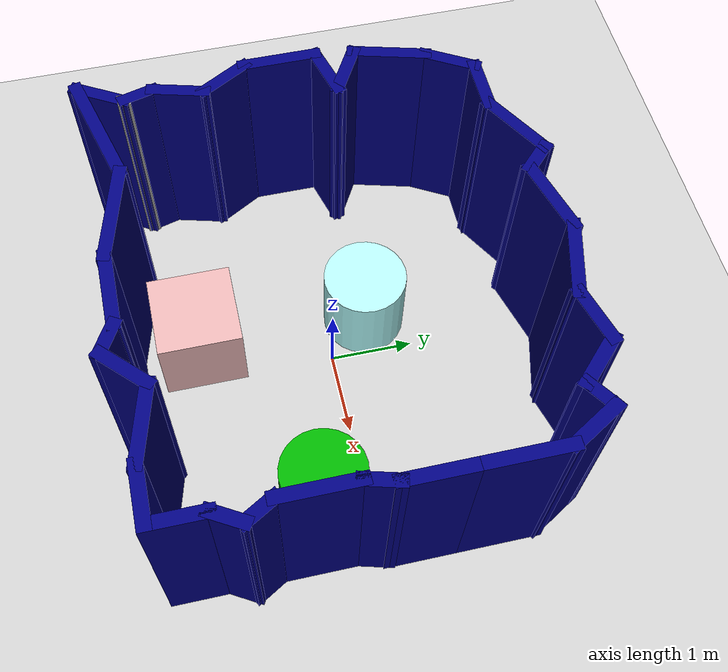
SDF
<sdf version="1.6">
 <world name="default">
  <light name="sun" type="directional">
   <pose>0 0 10 0 -0 0</pose>
   <diffuse>0.8 0.8 0.8 1</diffuse>
   <specular>0.2 0.2 0.2 1</specular>
   <attenuation>
    <range>1000</range>
    <constant>0.9</constant>
    <linear>0.01</linear>
    <quadratic>0.001</quadratic>
   </attenuation>
   <direction>-0.5 0.1 -0.9</direction>
  </light>
  <model name="ground_plane">
   <static>1</static>
   <link name="link">
    <collision name="collision">
     <geometry><plane><normal>0 0 1</normal><size>100 100</size></plane></geometry>
     <surface>
      <contact><collide_bitmask>65535</collide_bitmask></contact>
      <friction><ode><mu>100</mu><mu2>50</mu2></ode></friction>
     </surface>
    </collision>
    <visual name="visual">
     <cast_shadows>0</cast_shadows>
     <geometry><plane><normal>0 0 1</normal><size>100 100</size></plane></geometry>
     <material>
      <script><uri>file://media/materials/scripts/gazebo.material</uri><name>Gazebo/Grey</name></script>
     </material>
    </visual>
   </link>
  </model>
  <gravity>0 0 -9.8</gravity>
  <magnetic_field>6e-06 2.3e-05 -4.2e-05</magnetic_field>
  <atmosphere type="adiabatic"/>
  <physics name="default_physics" default="0" type="ode">
   <max_step_size>0.001</max_step_size>
   <real_time_factor>1</real_time_factor>
   <real_time_update_rate>1000</real_time_update_rate>
  </physics>
  <scene><ambient>0.4 0.4 0.4 1</ambient><background>0.7 0.7 0.7 1</background><shadows>1</shadows></scene>
  <audio><device>default</device></audio>
  <spherical_coordinates>
   <surface_model>EARTH_WGS84</surface_model>
   <latitude_deg>0</latitude_deg>
   <longitude_deg>0</longitude_deg>
   <elevation>0</elevation>
   <heading_deg>0</heading_deg>
  </spherical_coordinates>
  <model name="maze3">
   <pose>-0.02773 0.03242 0 0 -0 0</pose>
   <link name="Wall_19">
    <collision name="Wall_19_Collision">
     <geometry><box><size>0.75 0.15 2.5</size></box></geometry>
     <pose>0 0 1.25 0 -0 0</pose>
    </collision>
    <visual name="Wall_19_Visual">
     <pose>0 0 1.25 0 -0 0</pose>
     <geometry><box><size>0.75 0.15 2.5</size></box></geometry>
     <material>
      <script><uri>file://media/materials/scripts/gazebo.material</uri><name>Gazebo/Grey</name></script>
      <ambient>0 0 0.498039 1</ambient>
     </material>
     <meta><layer>0</layer></meta>
    </visual>
    <pose>1.88205 2.26472 0 0 -0 2.35619</pose>
   </link>
   <link name="Wall_20">
    <collision name="Wall_20_Collision">
     <geometry><box><size>0.75 0.15 2.5</size></box></geometry>
     <pose>0 0 1.25 0 -0 0</pose>
    </collision>
    <visual name="Wall_20_Visual">
     <pose>0 0 1.25 0 -0 0</pose>
     <geometry><box><size>0.75 0.15 2.5</size></box></geometry>
     <material>
      <script><uri>file://media/materials/scripts/gazebo.material</uri><name>Gazebo/Grey</name></script>
      <ambient>0 0 0.498039 1</ambient>
     </material>
     <meta><layer>0</layer></meta>
    </visual>
    <pose>1.38014 2.39921 0 0 -0 -2.87979</pose>
   </link>
   <link name="Wall_21">
    <collision name="Wall_21_Collision">
     <geometry><box><size>1 0.15 2.5</size></box></geometry>
     <pose>0 0 1.25 0 -0 0</pose>
    </collision>
    <visual name="Wall_21_Visual">
     <pose>0 0 1.25 0 -0 0</pose>
     <geometry><box><size>1 0.15 2.5</size></box></geometry>
     <material>
      <script><uri>file://media/materials/scripts/gazebo.material</uri><name>Gazebo/Grey</name></script>
      <ambient>0 0 0.498039 1</ambient>
     </material>
     <meta><layer>0</layer></meta>
    </visual>
    <pose>0.679842 2.43156 0 0 -0 2.87979</pose>
   </link>
   <link name="Wall_22">
    <collision name="Wall_22_Collision">
     <geometry><box><size>1 0.15 2.5</size></box></geometry>
     <pose>0 0 1.25 0 -0 0</pose>
    </collision>
    <visual name="Wall_22_Visual">
     <pose>0 0 1.25 0 -0 0</pose>
     <geometry><box><size>1 0.15 2.5</size></box></geometry>
     <material>
      <script><uri>file://media/materials/scripts/gazebo.material</uri><name>Gazebo/Grey</name></script>
      <ambient>0 0 0.498039 1</ambient>
     </material>
     <meta><layer>0</layer></meta>
    </visual>
    <pose>-0.141195 2.43156 0 0 -0 -2.87979</pose>
   </link>
   <link name="Wall_23">
    <collision name="Wall_23_Collision">
     <geometry><box><size>0.5 0.15 2.5</size></box></geometry>
     <pose>0 0 1.25 0 -0 0</pose>
    </collision>
    <visual name="Wall_23_Visual">
     <pose>0 0 1.25 0 -0 0</pose>
     <geometry><box><size>0.5 0.15 2.5</size></box></geometry>
     <material>
      <script><uri>file://media/materials/scripts/gazebo.material</uri><name>Gazebo/Grey</name></script>
      <ambient>0 0 0.498039 1</ambient>
     </material>
     <meta><layer>0</layer></meta>
    </visual>
    <pose>-0.675458 2.44531 0 0 -0 2.35619</pose>
   </link>
   <link name="Wall_24">
    <collision name="Wall_24_Collision">
     <geometry><box><size>1 0.15 2.5</size></box></geometry>
     <pose>0 0 1.25 0 -0 0</pose>
    </collision>
    <visual name="Wall_24_Visual">
     <pose>0 0 1.25 0 -0 0</pose>
     <geometry><box><size>1 0.15 2.5</size></box></geometry>
     <material>
      <script><uri>file://media/materials/scripts/gazebo.material</uri><name>Gazebo/Grey</name></script>
      <ambient>0 0 0.498039 1</ambient>
     </material>
     <meta><layer>0</layer></meta>
    </visual>
    <pose>-1.16726 2.35655 0 0 -0 -2.61799</pose>
   </link>
   <link name="Wall_25">
    <collision name="Wall_25_Collision">
     <geometry><box><size>0.75 0.15 2.5</size></box></geometry>
     <pose>0 0 1.25 0 -0 0</pose>
    </collision>
    <visual name="Wall_25_Visual">
     <pose>0 0 1.25 0 -0 0</pose>
     <geometry><box><size>0.75 0.15 2.5</size></box></geometry>
     <material>
      <script><uri>file://media/materials/scripts/gazebo.material</uri><name>Gazebo/Grey</name></script>
      <ambient>0 0 0.498039 1</ambient>
     </material>
     <meta><layer>0</layer></meta>
    </visual>
    <pose>-1.83532 2.14405 0 0 -0 3.14159</pose>
   </link>
   <link name="Wall_26">
    <collision name="Wall_26_Collision">
     <geometry><box><size>0.75 0.15 2.5</size></box></geometry>
     <pose>0 0 1.25 0 -0 0</pose>
    </collision>
    <visual name="Wall_26_Visual">
     <pose>0 0 1.25 0 -0 0</pose>
     <geometry><box><size>0.75 0.15 2.5</size></box></geometry>
     <material>
      <script><uri>file://media/materials/scripts/gazebo.material</uri><name>Gazebo/Grey</name></script>
      <ambient>0 0 0.498039 1</ambient>
     </material>
     <meta><layer>0</layer></meta>
    </visual>
    <pose>-2.28532 1.88424 0 0 -0 -2.0944</pose>
   </link>
   <link name="Wall_27">
    <collision name="Wall_27_Collision">
     <geometry><box><size>1 0.15 2.5</size></box></geometry>
     <pose>0 0 1.25 0 -0 0</pose>
    </collision>
    <visual name="Wall_27_Visual">
     <pose>0 0 1.25 0 -0 0</pose>
     <geometry><box><size>1 0.15 2.5</size></box></geometry>
     <material>
      <script><uri>file://media/materials/scripts/gazebo.material</uri><name>Gazebo/Grey</name></script>
      <ambient>0 0 0.498039 1</ambient>
     </material>
     <meta><layer>0</layer></meta>
    </visual>
    <pose>-2.54532 1.21392 0 0 -0 -1.8326</pose>
   </link>
   <link name="Wall_28">
    <collision name="Wall_28_Collision">
     <geometry><box><size>0.75 0.15 2.5</size></box></geometry>
     <pose>0 0 1.25 0 -0 0</pose>
    </collision>
    <visual name="Wall_28_Visual">
     <pose>0 0 1.25 0 -0 0</pose>
     <geometry><box><size>0.75 0.15 2.5</size></box></geometry>
     <material>
      <script><uri>file://media/materials/scripts/gazebo.material</uri><name>Gazebo/Grey</name></script>
      <ambient>0 0 0.498039 1</ambient>
     </material>
     <meta><layer>0</layer></meta>
    </visual>
    <pose>-2.39551 0.653397 0 0 -0 -0.523599</pose>
   </link>
   <link name="Wall_29">
    <collision name="Wall_29_Collision">
     <geometry><box><size>0.75 0.15 2.5</size></box></geometry>
     <pose>0 0 1.25 0 -0 0</pose>
    </collision>
    <visual name="Wall_29_Visual">
     <pose>0 0 1.25 0 -0 0</pose>
     <geometry><box><size>0.75 0.15 2.5</size></box></geometry>
     <material>
      <script><uri>file://media/materials/scripts/gazebo.material</uri><name>Gazebo/Grey</name></script>
      <ambient>0 0 0.498039 1</ambient>
     </material>
     <meta><layer>0</layer></meta>
    </visual>
    <pose>-2.42548 0.425751 0 0 -0 -2.87979</pose>
   </link>
   <link name="Wall_30">
    <collision name="Wall_30_Collision">
     <geometry><box><size>1 0.15 2.5</size></box></geometry>
     <pose>0 0 1.25 0 -0 0</pose>
    </collision>
    <visual name="Wall_30_Visual">
     <pose>0 0 1.25 0 -0 0</pose>
     <geometry><box><size>1 0.15 2.5</size></box></geometry>
     <material>
      <script><uri>file://media/materials/scripts/gazebo.material</uri><name>Gazebo/Grey</name></script>
      <ambient>0 0 0.498039 1</ambient>
     </material>
     <meta><layer>0</layer></meta>
    </visual>
    <pose>-2.71526 -0.076894 0 0 -0 -1.5708</pose>
   </link>
   <link name="Wall_31">
    <collision name="Wall_31_Collision">
     <geometry><box><size>0.75 0.15 2.5</size></box></geometry>
     <pose>0 0 1.25 0 -0 0</pose>
    </collision>
    <visual name="Wall_31_Visual">
     <pose>0 0 1.25 0 -0 0</pose>
     <geometry><box><size>0.75 0.15 2.5</size></box></geometry>
     <material>
      <script><uri>file://media/materials/scripts/gazebo.material</uri><name>Gazebo/Grey</name></script>
      <ambient>0 0 0.498039 1</ambient>
     </material>
     <meta><layer>0</layer></meta>
    </visual>
    <pose>-2.56526 -0.761702 0 0 -0 -1.0472</pose>
   </link>
   <link name="Wall_32">
    <collision name="Wall_32_Collision">
     <geometry><box><size>0.75 0.15 2.5</size></box></geometry>
     <pose>0 0 1.25 0 -0 0</pose>
    </collision>
    <visual name="Wall_32_Visual">
     <pose>0 0 1.25 0 -0 0</pose>
     <geometry><box><size>0.75 0.15 2.5</size></box></geometry>
     <material>
      <script><uri>file://media/materials/scripts/gazebo.material</uri><name>Gazebo/Grey</name></script>
      <ambient>0 0 0.498039 1</ambient>
     </material>
     <meta><layer>0</layer></meta>
    </visual>
    <pose>-2.4929 -1.31129 0 0 -0 -1.8326</pose>
   </link>
   <link name="Wall_33">
    <collision name="Wall_33_Collision">
     <geometry><box><size>0.5 0.15 2.5</size></box></geometry>
     <pose>0 0 1.25 0 -0 0</pose>
    </collision>
    <visual name="Wall_33_Visual">
     <pose>0 0 1.25 0 -0 0</pose>
     <geometry><box><size>0.5 0.15 2.5</size></box></geometry>
     <material>
      <script><uri>file://media/materials/scripts/gazebo.material</uri><name>Gazebo/Grey</name></script>
      <ambient>0 0 0.498039 1</ambient>
     </material>
     <meta><layer>0</layer></meta>
    </visual>
    <pose>-2.52526 -1.7701 0 0 -0 -1.309</pose>
   </link>
   <link name="Wall_34">
    <collision name="Wall_34_Collision">
     <geometry><box><size>0.16 0.15 2.5</size></box></geometry>
     <pose>0 0 1.25 0 -0 0</pose>
    </collision>
    <visual name="Wall_34_Visual">
     <pose>0 0 1.25 0 -0 0</pose>
     <geometry><box><size>0.16 0.15 2.5</size></box></geometry>
     <material>
      <script><uri>file://media/materials/scripts/gazebo.material</uri><name>Gazebo/Grey</name></script>
      <ambient>1 1 1 1</ambient>
     </material>
     <meta><layer>0</layer></meta>
    </visual>
    <pose>-2.47496 -1.93914 0 0 -0 0</pose>
   </link>
   <link name="Wall_35">
    <collision name="Wall_35_Collision">
     <geometry><box><size>0.75 0.15 2.5</size></box></geometry>
     <pose>0 0 1.25 0 -0 0</pose>
    </collision>
    <visual name="Wall_35_Visual">
     <pose>0 0 1.25 0 -0 0</pose>
     <geometry><box><size>0.75 0.15 2.5</size></box></geometry>
     <material>
      <script><uri>file://media/materials/scripts/gazebo.material</uri><name>Gazebo/Grey</name></script>
      <ambient>0 0 0.498039 1</ambient>
     </material>
     <meta><layer>0</layer></meta>
    </visual>
    <pose>-2.61996 -2.19895 0 0 -0 -2.0944</pose>
   </link>
   <link name="Wall_36">
    <collision name="Wall_36_Collision">
     <geometry><box><size>1.5 0.15 2.5</size></box></geometry>
     <pose>0 0 1.25 0 -0 0</pose>
    </collision>
    <visual name="Wall_36_Visual">
     <pose>0 0 1.25 0 -0 0</pose>
     <geometry><box><size>1.5 0.15 2.5</size></box></geometry>
     <material>
      <script><uri>file://media/materials/scripts/gazebo.material</uri><name>Gazebo/Grey</name></script>
      <ambient>0 0 0.498039 1</ambient>
     </material>
     <meta><layer>0</layer></meta>
    </visual>
    <pose>-2.11796 -2.28405 0 0 -0 0.261799</pose>
   </link>
   <link name="Wall_37">
    <collision name="Wall_37_Collision">
     <geometry><box><size>1.25 0.15 2.5</size></box></geometry>
     <pose>0 0 1.25 0 -0 0</pose>
    </collision>
    <visual name="Wall_37_Visual">
     <pose>0 0 1.25 0 -0 0</pose>
     <geometry><box><size>1.25 0.15 2.5</size></box></geometry>
     <material>
      <script><uri>file://media/materials/scripts/gazebo.material</uri><name>Gazebo/Grey</name></script>
      <ambient>0 0 0.498039 1</ambient>
     </material>
     <meta><layer>0</layer></meta>
    </visual>
    <pose>-0.934705 -2.2517 0 0 -0 -0.261799</pose>
   </link>
   <link name="Wall_38">
    <collision name="Wall_38_Collision">
     <geometry><box><size>1 0.15 2.5</size></box></geometry>
     <pose>0 0 1.25 0 -0 0</pose>
    </collision>
    <visual name="Wall_38_Visual">
     <pose>0 0 1.25 0 -0 0</pose>
     <geometry><box><size>1 0.15 2.5</size></box></geometry>
     <material>
      <script><uri>file://media/materials/scripts/gazebo.material</uri><name>Gazebo/Grey</name></script>
      <ambient>0 0 0.498039 1</ambient>
     </material>
     <meta><layer>0</layer></meta>
    </visual>
    <pose>0.021554 -2.39405 0 0 -0 0</pose>
   </link>
   <link name="Wall_39">
    <collision name="Wall_39_Collision">
     <geometry><box><size>0.5 0.15 2.5</size></box></geometry>
     <pose>0 0 1.25 0 -0 0</pose>
    </collision>
    <visual name="Wall_39_Visual">
     <pose>0 0 1.25 0 -0 0</pose>
     <geometry><box><size>0.5 0.15 2.5</size></box></geometry>
     <material>
      <script><uri>file://media/materials/scripts/gazebo.material</uri><name>Gazebo/Grey</name></script>
      <ambient>0 0 0.498039 1</ambient>
     </material>
     <meta><layer>0</layer></meta>
    </visual>
    <pose>0.598109 -2.48155 0 0 -0 -0.523599</pose>
   </link>
   <link name="Wall_40">
    <collision name="Wall_40_Collision">
     <geometry><box><size>0.75 0.15 2.5</size></box></geometry>
     <pose>0 0 1.25 0 -0 0</pose>
    </collision>
    <visual name="Wall_40_Visual">
     <pose>0 0 1.25 0 -0 0</pose>
     <geometry><box><size>0.75 0.15 2.5</size></box></geometry>
     <material>
      <script><uri>file://media/materials/scripts/gazebo.material</uri><name>Gazebo/Grey</name></script>
      <ambient>0 0 0.498039 1</ambient>
     </material>
     <meta><layer>0</layer></meta>
    </visual>
    <pose>0.961795 -2.35692 0 0 -0 0.785398</pose>
   </link>
   <link name="Wall_41">
    <collision name="Wall_41_Collision">
     <geometry><box><size>1 0.15 2.5</size></box></geometry>
     <pose>0 0 1.25 0 -0 0</pose>
    </collision>
    <visual name="Wall_41_Visual">
     <pose>0 0 1.25 0 -0 0</pose>
     <geometry><box><size>1 0.15 2.5</size></box></geometry>
     <material>
      <script><uri>file://media/materials/scripts/gazebo.material</uri><name>Gazebo/Grey</name></script>
      <ambient>0 0 0.498039 1</ambient>
     </material>
     <meta><layer>0</layer></meta>
    </visual>
    <pose>1.58445 -2.25478 0 0 -0 -0.261799</pose>
   </link>
   <link name="Wall_42">
    <collision name="Wall_42_Collision">
     <geometry><box><size>0.75 0.15 2.5</size></box></geometry>
     <pose>0 0 1.25 0 -0 0</pose>
    </collision>
    <visual name="Wall_42_Visual">
     <pose>0 0 1.25 0 -0 0</pose>
     <geometry><box><size>0.75 0.15 2.5</size></box></geometry>
     <material>
      <script><uri>file://media/materials/scripts/gazebo.material</uri><name>Gazebo/Grey</name></script>
      <ambient>0 0 0.498039 1</ambient>
     </material>
     <meta><layer>0</layer></meta>
    </visual>
    <pose>2.29496 -2.36478 0 0 -0 0</pose>
   </link>
   <link name="Wall_43">
    <collision name="Wall_43_Collision">
     <geometry><box><size>0.75 0.15 2.5</size></box></geometry>
     <pose>0 0 1.25 0 -0 0</pose>
    </collision>
    <visual name="Wall_43_Visual">
     <pose>0 0 1.25 0 -0 0</pose>
     <geometry><box><size>0.75 0.15 2.5</size></box></geometry>
     <material>
      <script><uri>file://media/materials/scripts/gazebo.material</uri><name>Gazebo/Grey</name></script>
      <ambient>0 0 0.498039 1</ambient>
     </material>
     <meta><layer>0</layer></meta>
    </visual>
    <pose>2.59496 -2.06478 0 0 -0 1.5708</pose>
   </link>
   <link name="Wall_44">
    <collision name="Wall_44_Collision">
     <geometry><box><size>0.5 0.15 2.5</size></box></geometry>
     <pose>0 0 1.25 0 -0 0</pose>
    </collision>
    <visual name="Wall_44_Visual">
     <pose>0 0 1.25 0 -0 0</pose>
     <geometry><box><size>0.5 0.15 2.5</size></box></geometry>
     <material>
      <script><uri>file://media/materials/scripts/gazebo.material</uri><name>Gazebo/Grey</name></script>
      <ambient>0 0 0.498039 1</ambient>
     </material>
     <meta><layer>0</layer></meta>
    </visual>
    <pose>2.68246 -1.61323 0 0 -0 1.0472</pose>
   </link>
   <link name="Wall_45">
    <collision name="Wall_45_Collision">
     <geometry><box><size>0.5 0.15 2.5</size></box></geometry>
     <pose>0 0 1.25 0 -0 0</pose>
    </collision>
    <visual name="Wall_45_Visual">
     <pose>0 0 1.25 0 -0 0</pose>
     <geometry><box><size>0.5 0.15 2.5</size></box></geometry>
     <material>
      <script><uri>file://media/materials/scripts/gazebo.material</uri><name>Gazebo/Grey</name></script>
      <ambient>0 0 0.498039 1</ambient>
     </material>
     <meta><layer>0</layer></meta>
    </visual>
    <pose>2.68246 -1.31012 0 0 -0 2.0944</pose>
   </link>
   <link name="Wall_46">
    <collision name="Wall_46_Collision">
     <geometry><box><size>1 0.15 2.5</size></box></geometry>
     <pose>0 0 1.25 0 -0 0</pose>
    </collision>
    <visual name="Wall_46_Visual">
     <pose>0 0 1.25 0 -0 0</pose>
     <geometry><box><size>1 0.15 2.5</size></box></geometry>
     <material>
      <script><uri>file://media/materials/scripts/gazebo.material</uri><name>Gazebo/Grey</name></script>
      <ambient>0 0 0.498039 1</ambient>
     </material>
     <meta><layer>0</layer></meta>
    </visual>
    <pose>2.59496 -0.733564 0 0 -0 1.5708</pose>
   </link>
   <link name="Wall_47">
    <collision name="Wall_47_Collision">
     <geometry><box><size>0.5 0.15 2.5</size></box></geometry>
     <pose>0 0 1.25 0 -0 0</pose>
    </collision>
    <visual name="Wall_47_Visual">
     <pose>0 0 1.25 0 -0 0</pose>
     <geometry><box><size>0.5 0.15 2.5</size></box></geometry>
     <material>
      <script><uri>file://media/materials/scripts/gazebo.material</uri><name>Gazebo/Grey</name></script>
      <ambient>0 0 0.498039 1</ambient>
     </material>
     <meta><layer>0</layer></meta>
    </visual>
    <pose>2.64026 -0.139527 0 0 -0 1.309</pose>
   </link>
   <link name="Wall_48">
    <collision name="Wall_48_Collision">
     <geometry><box><size>1 0.15 2.5</size></box></geometry>
     <pose>0 0 1.25 0 -0 0</pose>
    </collision>
    <visual name="Wall_48_Visual">
     <pose>0 0 1.25 0 -0 0</pose>
     <geometry><box><size>1 0.15 2.5</size></box></geometry>
     <material>
      <script><uri>file://media/materials/scripts/gazebo.material</uri><name>Gazebo/Grey</name></script>
      <ambient>0 0 0.498039 1</ambient>
     </material>
     <meta><layer>0</layer></meta>
    </visual>
    <pose>2.68555 0.45451 0 0 -0 1.5708</pose>
   </link>
   <link name="Wall_49">
    <collision name="Wall_49_Collision">
     <geometry><box><size>1 0.15 2.5</size></box></geometry>
     <pose>0 0 1.25 0 -0 0</pose>
    </collision>
    <visual name="Wall_49_Visual">
     <pose>0 0 1.25 0 -0 0</pose>
     <geometry><box><size>1 0.15 2.5</size></box></geometry>
     <material>
      <script><uri>file://media/materials/scripts/gazebo.material</uri><name>Gazebo/Grey</name></script>
      <ambient>0 0 0.498039 1</ambient>
     </material>
     <meta><layer>0</layer></meta>
    </visual>
    <pose>2.68555 1.30451 0 0 -0 1.5708</pose>
   </link>
   <link name="Wall_50">
    <collision name="Wall_50_Collision">
     <geometry><box><size>0.75 0.15 2.5</size></box></geometry>
     <pose>0 0 1.25 0 -0 0</pose>
    </collision>
    <visual name="Wall_50_Visual">
     <pose>0 0 1.25 0 -0 0</pose>
     <geometry><box><size>0.75 0.15 2.5</size></box></geometry>
     <material>
      <script><uri>file://media/materials/scripts/gazebo.material</uri><name>Gazebo/Grey</name></script>
      <ambient>0 0 0.498039 1</ambient>
     </material>
     <meta><layer>0</layer></meta>
    </visual>
    <pose>2.53555 1.98932 0 0 -0 2.0944</pose>
   </link>
   <link name="Wall_51">
    <collision name="Wall_51_Collision">
     <geometry><box><size>0.501459 0.15 2.5</size></box></geometry>
     <pose>0 0 1.25 0 -0 0</pose>
    </collision>
    <visual name="Wall_51_Visual">
     <pose>0 0 1.25 0 -0 0</pose>
     <geometry><box><size>0.501459 0.15 2.5</size></box></geometry>
     <material>
      <script><uri>file://media/materials/scripts/gazebo.material</uri><name>Gazebo/Grey</name></script>
      <ambient>0 0 0.498039 1</ambient>
     </material>
     <meta><layer>0</layer></meta>
    </visual>
    <pose>2.23986 2.15086 0 0 -0 -2.54817</pose>
   </link>
   <static>1</static>
  </model>
  <model name="unit_cylinder">
   <link name="link">
    <inertial>
     <mass>1</mass>
     <inertia><ixx>0.145833</ixx><ixy>0</ixy><ixz>0</ixz><iyy>0.145833</iyy><iyz>0</iyz><izz>0.125</izz></inertia>
    </inertial>
    <visual name="visual">
     <geometry><cylinder><radius>0.5</radius><length>1</length></cylinder></geometry>
     <material>
      <script><name>Gazebo/Grey</name><uri>file://media/materials/scripts/gazebo.material</uri></script>
      <diffuse>0 0.7 0 0</diffuse>
      <shader type="vertex"><normal_map>__default__</normal_map></shader>
      <ambient>0.3 0.8 0.3 1</ambient>
      <specular>0.01 0.41 0.01 1</specular>
      <emissive>0 0.6 0 1</emissive>
     </material>
    </visual>
    <collision name="collision">
     <geometry><cylinder><radius>0.5</radius><length>1</length></cylinder></geometry>
     <surface>
      <friction>
       <ode><mu>1</mu><mu2>1</mu2><fdir1>0 0 0</fdir1><slip1>0</slip1><slip2>0</slip2></ode>
       <torsional>
        <coefficient>1</coefficient>
        <patch_radius>0</patch_radius>
        <surface_radius>0</surface_radius>
        <use_patch_radius>1</use_patch_radius>
        <ode><slip>0</slip></ode>
       </torsional>
      </friction>
      <bounce><restitution_coefficient>0</restitution_coefficient><threshold>1e+06</threshold></bounce>
      <contact>
       <collide_without_contact>0</collide_without_contact>
       <collide_without_contact_bitmask>1</collide_without_contact_bitmask>
       <collide_bitmask>1</collide_bitmask>
       <ode>
        <soft_cfm>0</soft_cfm>
        <soft_erp>0.2</soft_erp>
        <kp>1e+13</kp>
        <kd>1</kd>
        <max_vel>0.01</max_vel>
        <min_depth>0</min_depth>
       </ode>
       <bullet>
        <split_impulse>1</split_impulse>
        <split_impulse_penetration_threshold>-0.01</split_impulse_penetration_threshold>
        <soft_cfm>0</soft_cfm>
        <soft_erp>0.2</soft_erp>
        <kp>1e+13</kp>
        <kd>1</kd>
       </bullet>
      </contact>
     </surface>
    </collision>
   </link>
   <static>0</static>
   <pose>1.82437 -0.504665 0.499991 0 -0 0</pose>
  </model>
  <model name="unit_box">
   <link name="link">
    <inertial>
     <mass>1</mass>
     <inertia>
      <ixx>0.166667</ixx>
      <ixy>0</ixy>
      <ixz>0</ixz>
      <iyy>0.166667</iyy>
      <iyz>0</iyz>
      <izz>0.166667</izz>
     </inertia>
    </inertial>
    <visual name="visual">
     <geometry><box><size>1 1 1</size></box></geometry>
     <material>
      <script><name>Gazebo/Grey</name><uri>file://media/materials/scripts/gazebo.material</uri></script>
      <shader type="vertex"><normal_map>__default__</normal_map></shader>
      <ambient>1 0.3 0.3 1</ambient>
      <diffuse>0.9 0.7 0.7 1</diffuse>
      <specular>0.71 0.01 0.01 1</specular>
      <emissive>0.5 0 0 1</emissive>
     </material>
    </visual>
    <collision name="collision">
     <geometry><box><size>1 1 1</size></box></geometry>
     <surface>
      <friction>
       <ode><mu>1</mu><mu2>1</mu2><fdir1>0 0 0</fdir1><slip1>0</slip1><slip2>0</slip2></ode>
       <torsional>
        <coefficient>1</coefficient>
        <patch_radius>0</patch_radius>
        <surface_radius>0</surface_radius>
        <use_patch_radius>1</use_patch_radius>
        <ode><slip>0</slip></ode>
       </torsional>
      </friction>
      <bounce><restitution_coefficient>0</restitution_coefficient><threshold>1e+06</threshold></bounce>
      <contact>
       <collide_without_contact>0</collide_without_contact>
       <collide_without_contact_bitmask>1</collide_without_contact_bitmask>
       <collide_bitmask>1</collide_bitmask>
       <ode>
        <soft_cfm>0</soft_cfm>
        <soft_erp>0.2</soft_erp>
        <kp>1e+13</kp>
        <kd>1</kd>
        <max_vel>0.01</max_vel>
        <min_depth>0</min_depth>
       </ode>
       <bullet>
        <split_impulse>1</split_impulse>
        <split_impulse_penetration_threshold>-0.01</split_impulse_penetration_threshold>
        <soft_cfm>0</soft_cfm>
        <soft_erp>0.2</soft_erp>
        <kp>1e+13</kp>
        <kd>1</kd>
       </bullet>
      </contact>
     </surface>
    </collision>
   </link>
   <static>0</static>
   <pose>-0.476097 -1.57385 0.5 0 -0 0</pose>
  </model>
  <model name="unit_cylinder22">
   <link name="link">
    <inertial>
     <mass>1</mass>
     <inertia><ixx>0.145833</ixx><ixy>0</ixy><ixz>0</ixz><iyy>0.145833</iyy><iyz>0</iyz><izz>0.125</izz></inertia>
    </inertial>
    <visual name="visual">
     <geometry><cylinder><radius>0.5</radius><length>1</length></cylinder></geometry>
     <material>
      <script><name>Gazebo/Grey</name><uri>file://media/materials/scripts/gazebo.material</uri></script>
      <ambient>0 1 1 0</ambient>
      <shader type="vertex"><normal_map>__default__</normal_map></shader>
      <diffuse>0.7 1 1 1</diffuse>
      <specular>0.01 1 1 1</specular>
      <emissive>0 1 1 1</emissive>
     </material>
    </visual>
    <collision name="collision">
     <geometry><cylinder><radius>0.5</radius><length>1</length></cylinder></geometry>
     <surface>
      <friction>
       <ode><mu>1</mu><mu2>1</mu2><fdir1>0 0 0</fdir1><slip1>0</slip1><slip2>0</slip2></ode>
       <torsional>
        <coefficient>1</coefficient>
        <patch_radius>0</patch_radius>
        <surface_radius>0</surface_radius>
        <use_patch_radius>1</use_patch_radius>
        <ode><slip>0</slip></ode>
       </torsional>
      </friction>
      <bounce><restitution_coefficient>0</restitution_coefficient><threshold>1e+06</threshold></bounce>
      <contact>
       <collide_without_contact>0</collide_without_contact>
       <collide_without_contact_bitmask>1</collide_without_contact_bitmask>
       <collide_bitmask>1</collide_bitmask>
       <ode>
        <soft_cfm>0</soft_cfm>
        <soft_erp>0.2</soft_erp>
        <kp>1e+13</kp>
        <kd>1</kd>
        <max_vel>0.01</max_vel>
        <min_depth>0</min_depth>
       </ode>
       <bullet>
        <split_impulse>1</split_impulse>
        <split_impulse_penetration_threshold>-0.01</split_impulse_penetration_threshold>
        <soft_cfm>0</soft_cfm>
        <soft_erp>0.2</soft_erp>
        <kp>1e+13</kp>
        <kd>1</kd>
       </bullet>
      </contact>
     </surface>
    </collision>
   </link>
   <static>0</static>
   <pose>-0.492905 0.509699 0.499991 0 -0 0</pose>
  </model>
 </world>
</sdf>
